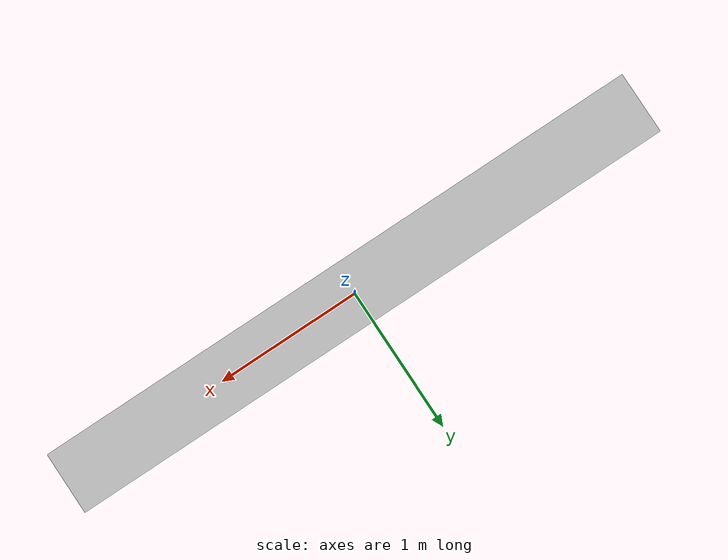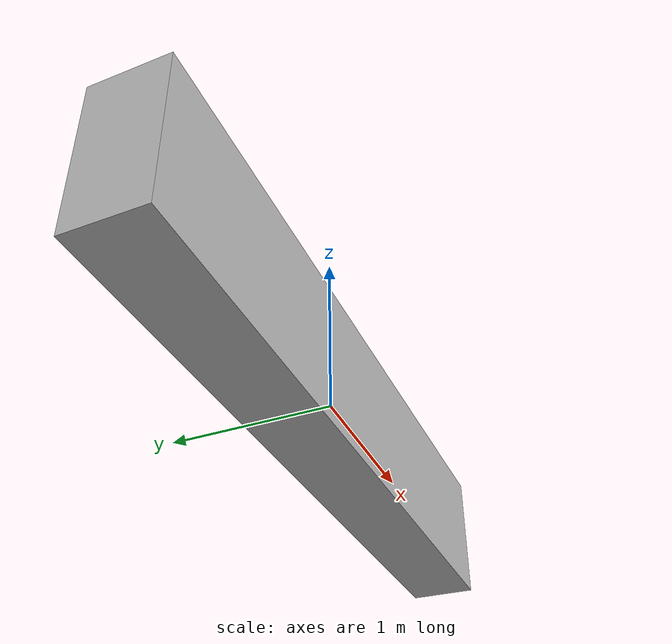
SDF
<?xml version="1.0" ?>
<sdf version="1.5">
  <model name="smaze_wall_short">
    <static>true</static>
    <link name="link">
      <pose>0 0 0 0 0 0</pose>
      <collision name="collision">
        <geometry>
          <box>
            <size>4 0.4 0.8</size>
          </box>
        </geometry>
      </collision>
      <visual name="visual">
        <geometry>
          <box>
            <size>4 0.4 0.8</size>
          </box>
        </geometry>
        <material>
          <script>
            <uri>model://smaze_wall_short/materials/scripts</uri>
            <uri>model://smaze_wall_short/materials/textures</uri>
            <name>vrc/smaze_wall_short</name>
          </script>
        </material>
      </visual>
    </link>
  </model>
</sdf>
